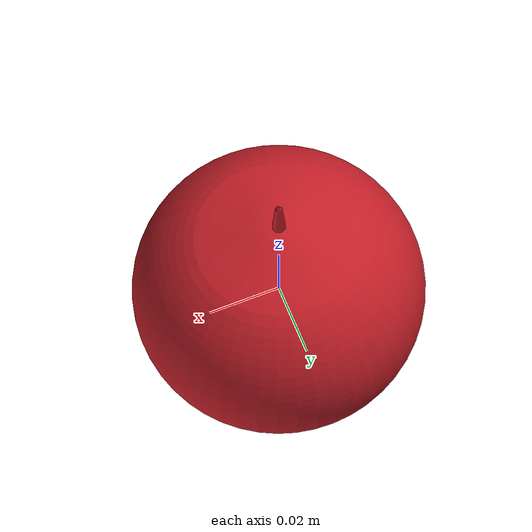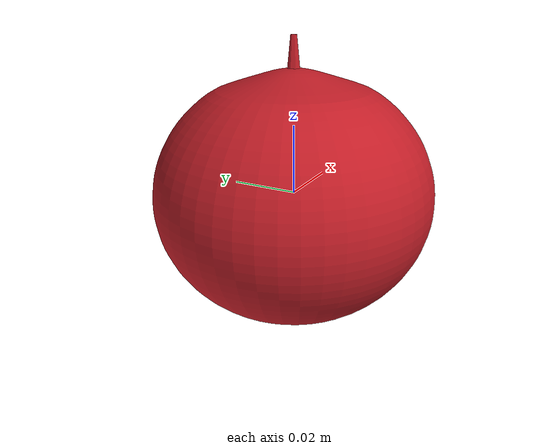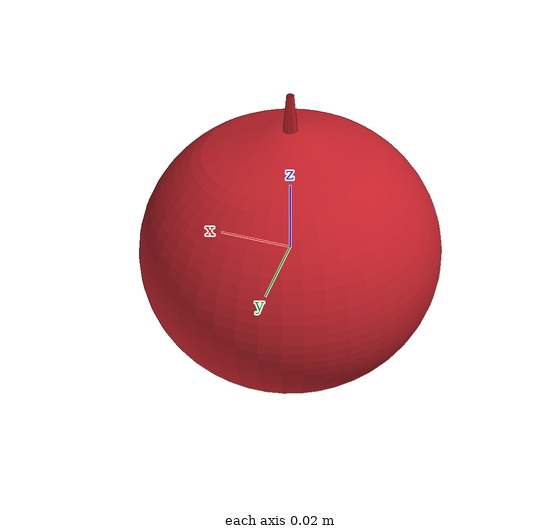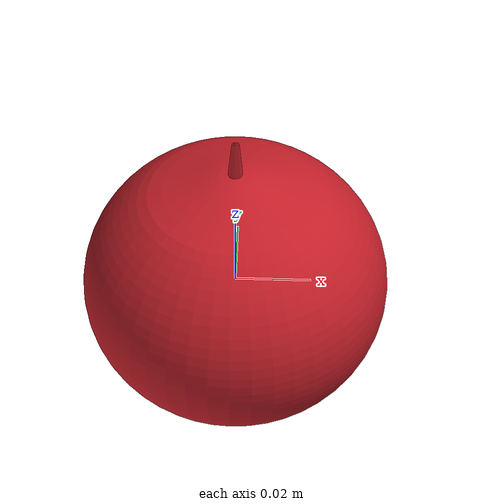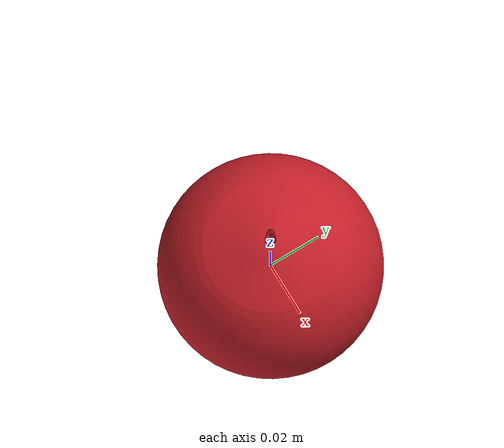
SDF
<?xml version="1.0" ?>
<sdf version="1.7">
  <model name="apple_01">
    <pose>0 0 0 0 0 0</pose>
    <link name="link">
      <inertial>
        <mass>0.18</mass>
        <inertia>
          <ixx>0.00011520</ixx>
          <iyy>0.00011520</iyy>
          <izz>0.00011520</izz>
          <ixy>0</ixy>
          <ixz>0</ixz>
          <iyz>0</iyz>
        </inertia>
      </inertial>

      <collision name="collision">
        <geometry>
          <sphere>
            <radius>0.04000</radius>
          </sphere>
        </geometry>
        <surface>
          <friction>
            <ode>
              <mu>0.8</mu>
              <mu2>0.8</mu2>
            </ode>
          </friction>
          <contact>
            <ode>
              <kp>100000.0</kp>
              <kd>1.0</kd>
              <min_depth>0.001</min_depth>
            </ode>
          </contact>
        </surface>
      </collision>

      <visual name="visual">
        <geometry>
          <mesh>
            <uri>model://apple_01/meshes/apple_01_v4.obj</uri>
            <scale>0.04000 0.04000 0.04000</scale>
          </mesh>
        </geometry>
        <material>
          <ambient>0.769 0.118 0.157 1</ambient>
          <diffuse>0.769 0.118 0.157 1</diffuse>
          <specular>0.35 0.35 0.35 1</specular>
        </material>
      </visual>
    </link>
  </model>
</sdf>
